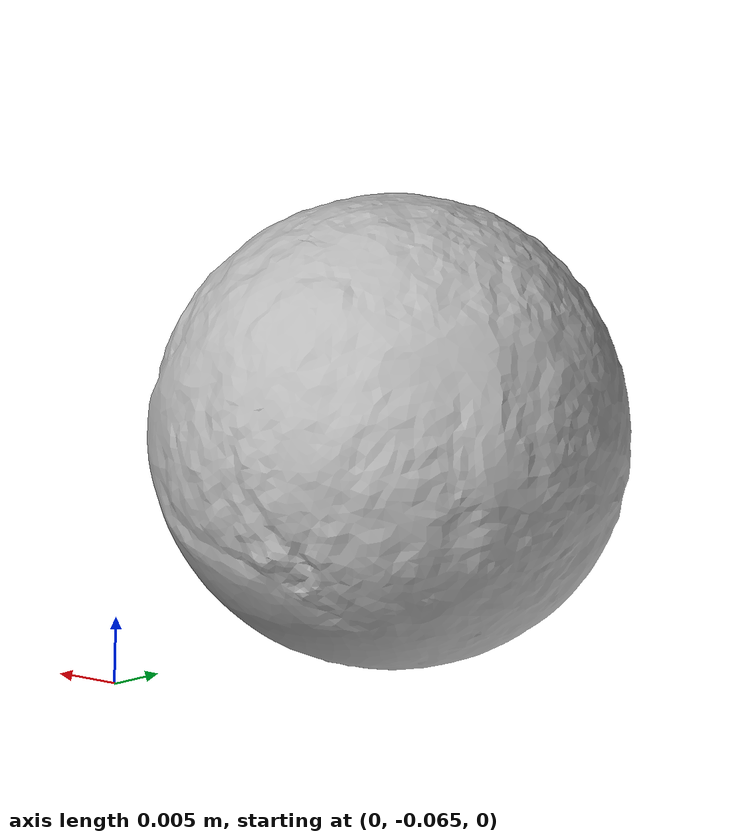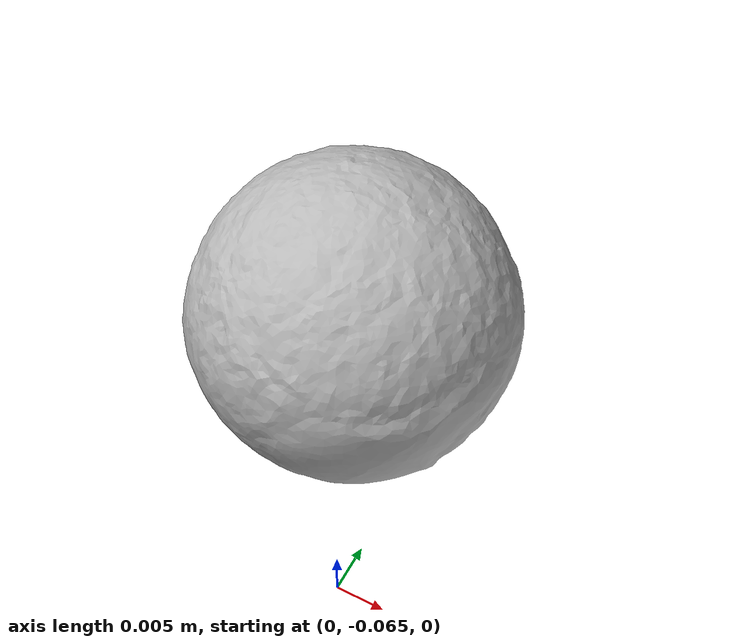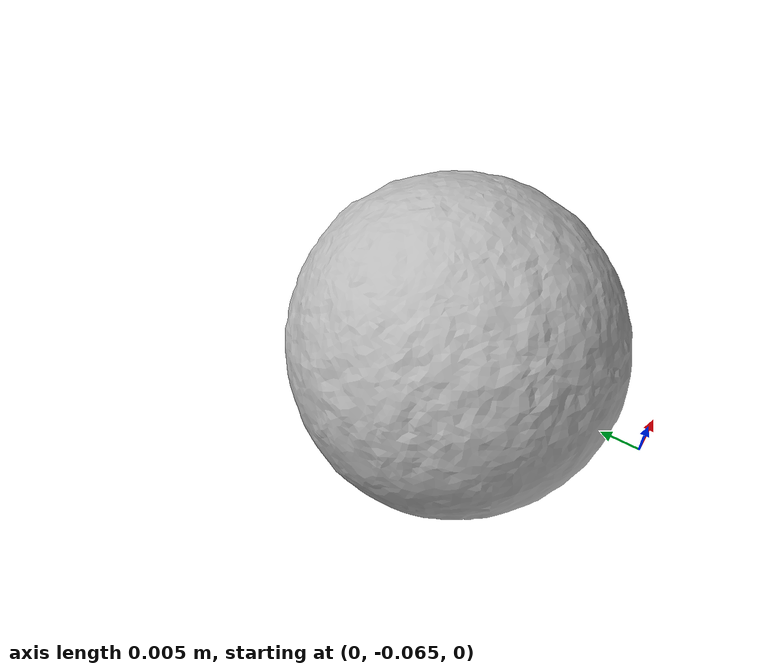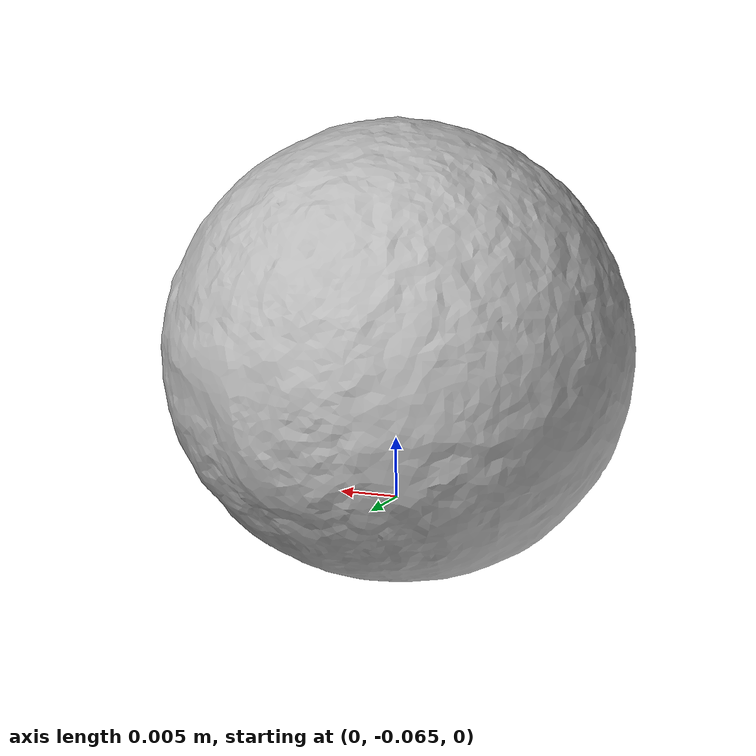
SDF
<?xml version='1.0'?>
<sdf version="1.4">
  <model name="b_marbles">
    <static>false</static>
    <link name="link">
      <inertial>
        <pose>-0.009111904265061217 -0.04511233142812526 0.016845139796964972 2.262088034391094 -1.3669004722573834 -1.827334505979422</pose>
        <mass>2.189252485695283e-05</mass>
        <inertia>
          <ixx>2.665681709302112e-09</ixx>
          <ixy>-4.7509549517020836e-26</ixy>
          <ixz>-1.349583824742007e-25</ixz>
          <iyy>2.633036799706382e-09</iyy>
          <iyz>5.824526965988248e-25</iyz>
          <izz>2.61540363210651e-09</izz>
        </inertia>
      </inertial>
      <collision name="collision">
        <geometry>
          <mesh>
            <!-- Use a downsampled mesh for collisions -->
            <uri>model://063-b_marbles/google_16k/063-b_marbles.obj</uri>
            </mesh>
        </geometry>
        <surface>
          <friction>
            <ode>
              <mu>0.9</mu>
              <mu2>0.9</mu2>
            </ode>
          </friction>
          <contact>
            <ode>
              <kp>1000000000000.0</kp>
              <kd>1</kd>
              <min_depth>0.0001</min_depth>
              <max_vel>0.01</max_vel>
            </ode>
          </contact>
          <bounce>
            <restitution_coefficient>0.1</restitution_coefficient>
            <threshold>1000.0</threshold>
          </bounce>
        </surface>
      </collision>
      <visual name="visual">
        <geometry>
          <mesh>
            <uri>model://063-b_marbles/google_16k/063-b_marbles.dae</uri>
            </mesh>
        </geometry>
      </visual>
    </link>
  </model>
</sdf>
